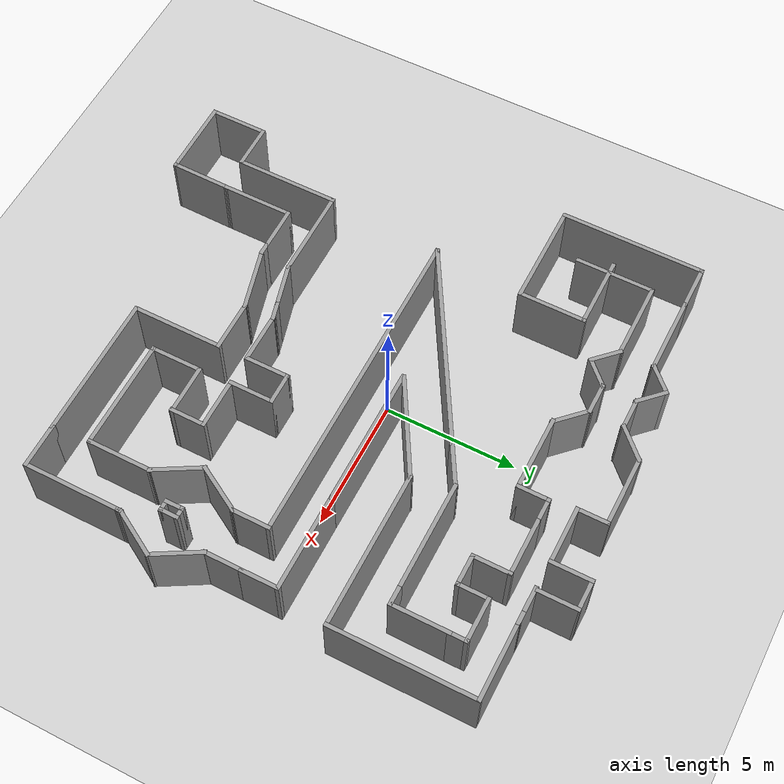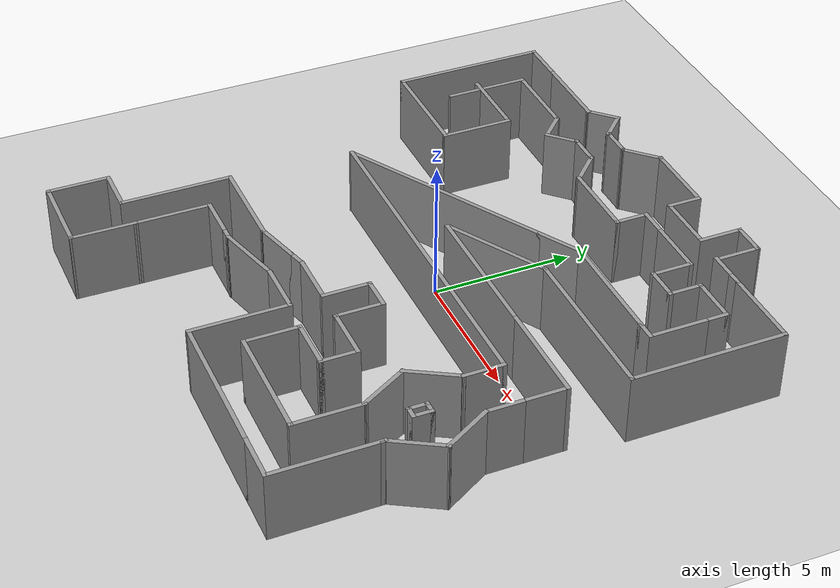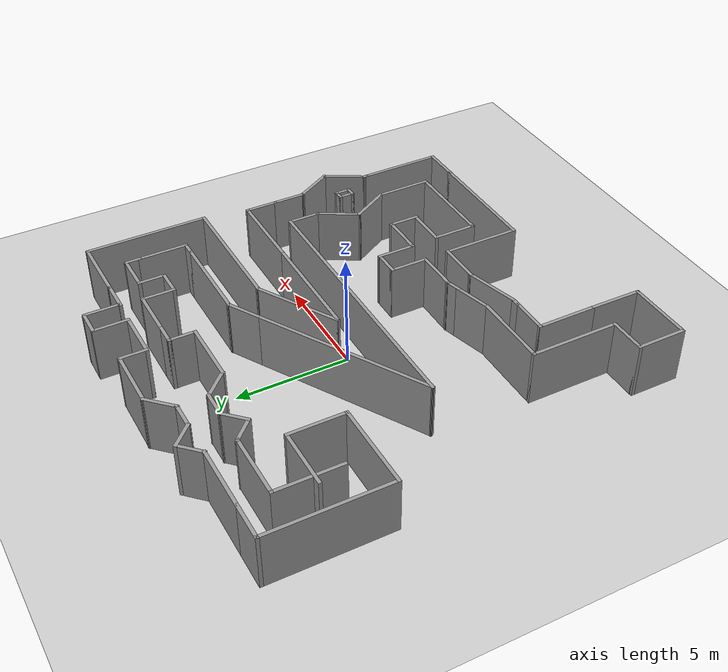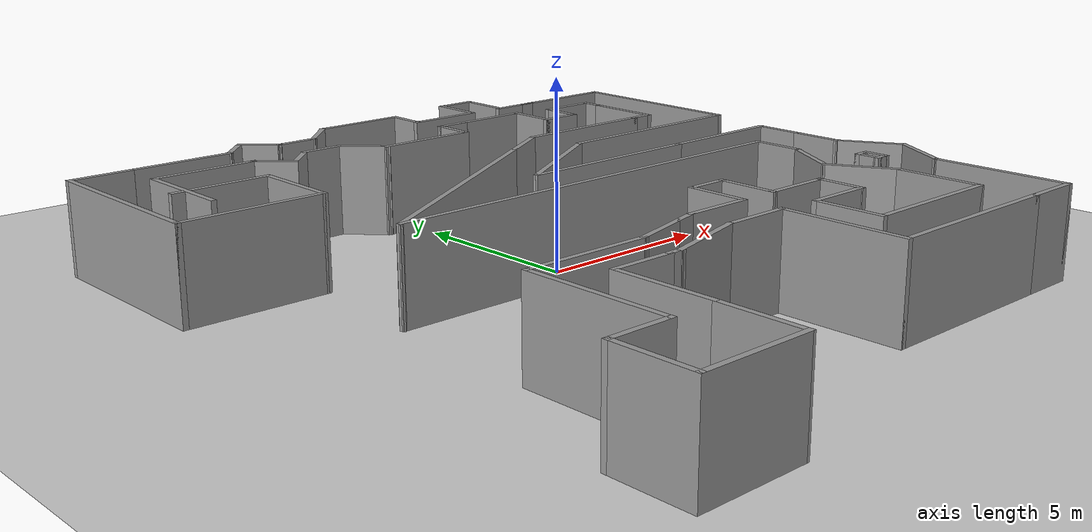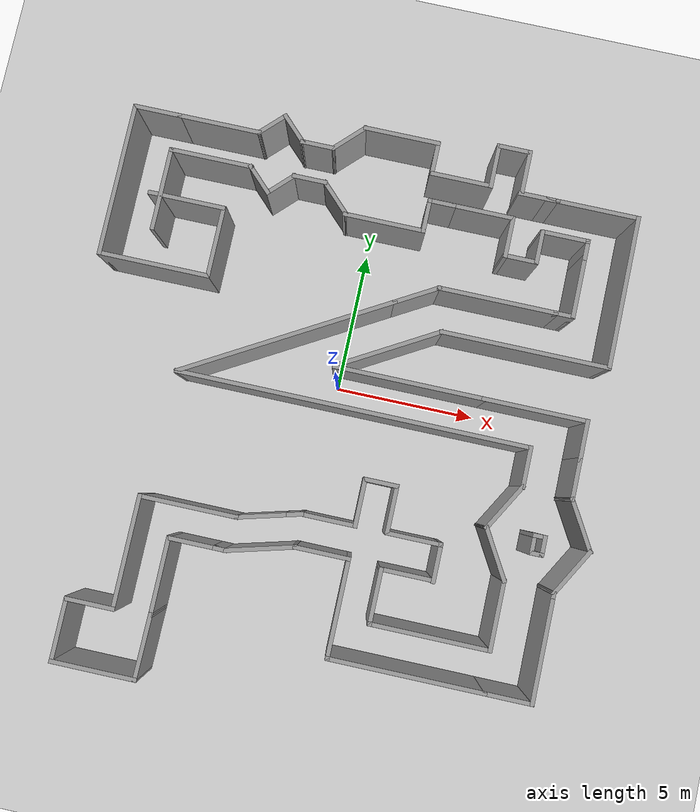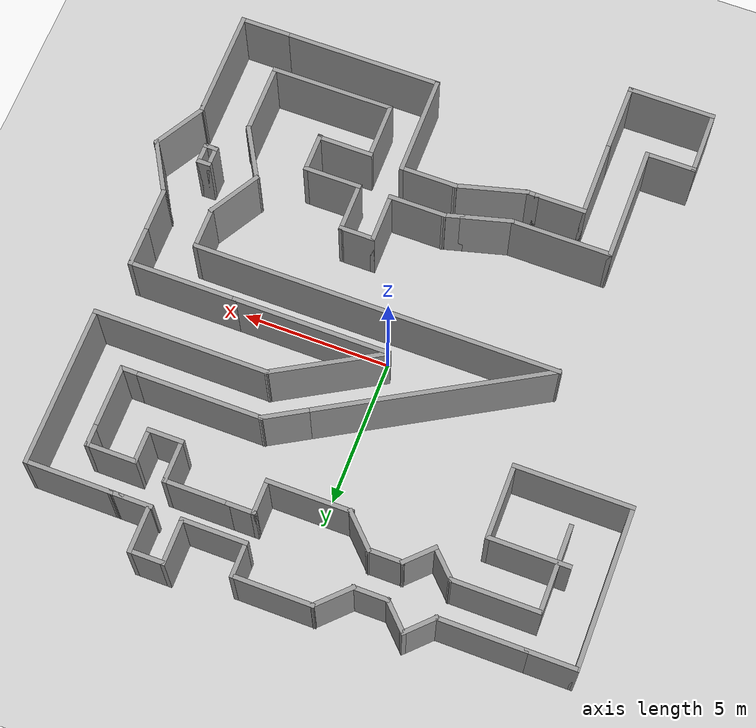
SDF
<sdf version="1.6">
 <world name="default">
  <plugin name="gazebo_occupancy_map" filename="libgazebo_grid_map_plugin.so">
   <map_resolution>0.05</map_resolution>
   <map_height>0.3</map_height>
   <map_size_x>24</map_size_x>
   <map_size_y>24</map_size_y>
   <init_robot_x>0</init_robot_x>
   <init_robot_y>0</init_robot_y>
  </plugin>
  <light name="sun" type="directional">
   <pose>0 0 10 0 -0 0</pose>
   <diffuse>0.8 0.8 0.8 1</diffuse>
   <specular>0.2 0.2 0.2 1</specular>
   <attenuation>
    <range>1000</range>
    <constant>0.9</constant>
    <linear>0.01</linear>
    <quadratic>0.001</quadratic>
   </attenuation>
   <direction>-0.5 0.1 -0.9</direction>
  </light>
  <model name="ground_plane">
   <static>1</static>
   <link name="link">
    <collision name="collision">
     <geometry><plane><normal>0 0 1</normal><size>100 100</size></plane></geometry>
     <surface><friction><ode><mu>100</mu><mu2>50</mu2></ode></friction></surface>
    </collision>
    <visual name="visual">
     <cast_shadows>0</cast_shadows>
     <geometry><plane><normal>0 0 1</normal><size>100 100</size></plane></geometry>
     <material>
      <script><uri>file://media/materials/scripts/gazebo.material</uri><name>Gazebo/Grey</name></script>
     </material>
    </visual>
   </link>
  </model>
  <gravity>0 0 -9.8</gravity>
  <magnetic_field>6e-06 2.3e-05 -4.2e-05</magnetic_field>
  <atmosphere type="adiabatic"/>
  <physics name="default_physics" default="0" type="ode">
   <max_step_size>0.001</max_step_size>
   <real_time_factor>1</real_time_factor>
   <real_time_update_rate>1000</real_time_update_rate>
  </physics>
  <scene><ambient>0.4 0.4 0.4 1</ambient><background>0.7 0.7 0.7 1</background><shadows>1</shadows></scene>
  <audio><device>default</device></audio>
  <spherical_coordinates>
   <surface_model>EARTH_WGS84</surface_model>
   <latitude_deg>0</latitude_deg>
   <longitude_deg>0</longitude_deg>
   <elevation>0</elevation>
   <heading_deg>0</heading_deg>
  </spherical_coordinates>
  <model name="track">
   <pose>0.291506 -0.924937 0 0 -0 0</pose>
   <link name="Wall_10">
    <collision name="Wall_10_Collision">
     <geometry><box><size>1.75 0.15 2.5</size></box></geometry>
     <pose>0 0 1.25 0 -0 0</pose>
    </collision>
    <visual name="Wall_10_Visual">
     <pose>0 0 1.25 0 -0 0</pose>
     <geometry><box><size>1.75 0.15 2.5</size></box></geometry>
     <material>
      <script><uri>file://media/materials/scripts/gazebo.material</uri><name>Gazebo/Grey</name></script>
      <ambient>1 1 1 1</ambient>
     </material>
     <meta><layer>0</layer></meta>
    </visual>
    <pose>-1.84314 -4.07321 0 0 -0 0.261799</pose>
   </link>
   <link name="Wall_100">
    <collision name="Wall_100_Collision">
     <geometry><box><size>1.25 0.15 2.5</size></box></geometry>
     <pose>0 0 1.25 0 -0 0</pose>
    </collision>
    <visual name="Wall_100_Visual">
     <pose>0 0 1.25 0 -0 0</pose>
     <geometry><box><size>1.25 0.15 2.5</size></box></geometry>
     <material>
      <script><uri>file://media/materials/scripts/gazebo.material</uri><name>Gazebo/Grey</name></script>
      <ambient>1 1 1 1</ambient>
     </material>
     <meta><layer>0</layer></meta>
    </visual>
    <pose>-2.72975 8.91254 0 0 -0 3.14159</pose>
   </link>
   <link name="Wall_101">
    <collision name="Wall_101_Collision">
     <geometry><box><size>1.25 0.15 2.5</size></box></geometry>
     <pose>0 0 1.25 0 -0 0</pose>
    </collision>
    <visual name="Wall_101_Visual">
     <pose>0 0 1.25 0 -0 0</pose>
     <geometry><box><size>1.25 0.15 2.5</size></box></geometry>
     <material>
      <script><uri>file://media/materials/scripts/gazebo.material</uri><name>Gazebo/Grey</name></script>
      <ambient>1 1 1 1</ambient>
     </material>
     <meta><layer>0</layer></meta>
    </visual>
    <pose>-3.66866 9.30145 0 0 -0 2.35619</pose>
   </link>
   <link name="Wall_102">
    <collision name="Wall_102_Collision">
     <geometry><box><size>1.25 0.15 2.5</size></box></geometry>
     <pose>0 0 1.25 0 -0 0</pose>
    </collision>
    <visual name="Wall_102_Visual">
     <pose>0 0 1.25 0 -0 0</pose>
     <geometry><box><size>1.25 0.15 2.5</size></box></geometry>
     <material>
      <script><uri>file://media/materials/scripts/gazebo.material</uri><name>Gazebo/Grey</name></script>
      <ambient>1 1 1 1</ambient>
     </material>
     <meta><layer>0</layer></meta>
    </visual>
    <pose>-4.44647 9.30145 0 0 -0 -2.35619</pose>
   </link>
   <link name="Wall_104">
    <collision name="Wall_104_Collision">
     <geometry><box><size>0.15 0.15 2.5</size></box></geometry>
     <pose>0 0 1.25 0 -0 0</pose>
    </collision>
    <visual name="Wall_104_Visual">
     <pose>0 0 1.25 0 -0 0</pose>
     <geometry><box><size>0.15 0.15 2.5</size></box></geometry>
     <material>
      <script><uri>file://media/materials/scripts/gazebo.material</uri><name>Gazebo/Grey</name></script>
      <ambient>1 1 1 1</ambient>
     </material>
     <meta><layer>0</layer></meta>
    </visual>
    <pose>1.5051 7.80135 0 0 -0 0</pose>
   </link>
   <link name="Wall_105">
    <collision name="Wall_105_Collision">
     <geometry><box><size>1.25 0.15 2.5</size></box></geometry>
     <pose>0 0 1.25 0 -0 0</pose>
    </collision>
    <visual name="Wall_105_Visual">
     <pose>0 0 1.25 0 -0 0</pose>
     <geometry><box><size>1.25 0.15 2.5</size></box></geometry>
     <material>
      <script><uri>file://media/materials/scripts/gazebo.material</uri><name>Gazebo/Grey</name></script>
      <ambient>1 1 1 1</ambient>
     </material>
     <meta><layer>0</layer></meta>
    </visual>
    <pose>1.5051 7.25135 0 0 -0 -1.5708</pose>
   </link>
   <link name="Wall_106">
    <collision name="Wall_106_Collision">
     <geometry><box><size>2.92589 0.15 2.5</size></box></geometry>
     <pose>0 0 1.25 0 -0 0</pose>
    </collision>
    <visual name="Wall_106_Visual">
     <pose>0 0 1.25 0 -0 0</pose>
     <geometry><box><size>2.92589 0.15 2.5</size></box></geometry>
     <material>
      <script><uri>file://media/materials/scripts/gazebo.material</uri><name>Gazebo/Grey</name></script>
      <ambient>1 1 1 1</ambient>
     </material>
     <meta><layer>0</layer></meta>
    </visual>
    <pose>0.117152 6.70135 0 0 -0 3.14159</pose>
   </link>
   <link name="Wall_107">
    <collision name="Wall_107_Collision">
     <geometry><box><size>1.5 0.15 2.5</size></box></geometry>
     <pose>0 0 1.25 0 -0 0</pose>
    </collision>
    <visual name="Wall_107_Visual">
     <pose>0 0 1.25 0 -0 0</pose>
     <geometry><box><size>1.5 0.15 2.5</size></box></geometry>
     <material>
      <script><uri>file://media/materials/scripts/gazebo.material</uri><name>Gazebo/Grey</name></script>
      <ambient>1 1 1 1</ambient>
     </material>
     <meta><layer>0</layer></meta>
    </visual>
    <pose>-1.71291 7.17864 0 0 -0 2.35619</pose>
   </link>
   <link name="Wall_11">
    <collision name="Wall_11_Collision">
     <geometry><box><size>0.75 0.15 2.5</size></box></geometry>
     <pose>0 0 1.25 0 -0 0</pose>
    </collision>
    <visual name="Wall_11_Visual">
     <pose>0 0 1.25 0 -0 0</pose>
     <geometry><box><size>0.75 0.15 2.5</size></box></geometry>
     <material>
      <script><uri>file://media/materials/scripts/gazebo.material</uri><name>Gazebo/Grey</name></script>
      <ambient>1 1 1 1</ambient>
     </material>
     <meta><layer>0</layer></meta>
    </visual>
    <pose>-0.780618 -3.78851 0 0 -0 0.261799</pose>
   </link>
   <link name="Wall_116">
    <collision name="Wall_116_Collision">
     <geometry><box><size>1.25 0.15 2.5</size></box></geometry>
     <pose>0 0 1.25 0 -0 0</pose>
    </collision>
    <visual name="Wall_116_Visual">
     <pose>0 0 1.25 0 -0 0</pose>
     <geometry><box><size>1.25 0.15 2.5</size></box></geometry>
     <material>
      <script><uri>file://media/materials/scripts/gazebo.material</uri><name>Gazebo/Grey</name></script>
      <ambient>1 1 1 1</ambient>
     </material>
     <meta><layer>0</layer></meta>
    </visual>
    <pose>-2.74021 7.65594 0 0 -0 3.14159</pose>
   </link>
   <link name="Wall_118">
    <collision name="Wall_118_Collision">
     <geometry><box><size>1.25 0.15 2.5</size></box></geometry>
     <pose>0 0 1.25 0 -0 0</pose>
    </collision>
    <visual name="Wall_118_Visual">
     <pose>0 0 1.25 0 -0 0</pose>
     <geometry><box><size>1.25 0.15 2.5</size></box></geometry>
     <material>
      <script><uri>file://media/materials/scripts/gazebo.material</uri><name>Gazebo/Grey</name></script>
      <ambient>1 1 1 1</ambient>
     </material>
     <meta><layer>0</layer></meta>
    </visual>
    <pose>-3.67912 7.26703 0 0 -0 -2.35619</pose>
   </link>
   <link name="Wall_12">
    <collision name="Wall_12_Collision">
     <geometry><box><size>2 0.15 2.5</size></box></geometry>
     <pose>0 0 1.25 0 -0 0</pose>
    </collision>
    <visual name="Wall_12_Visual">
     <pose>0 0 1.25 0 -0 0</pose>
     <geometry><box><size>2 0.15 2.5</size></box></geometry>
     <material>
      <script><uri>file://media/materials/scripts/gazebo.material</uri><name>Gazebo/Grey</name></script>
      <ambient>1 1 1 1</ambient>
     </material>
     <meta><layer>0</layer></meta>
    </visual>
    <pose>0.43416 -3.71087 0 0 -0 0</pose>
   </link>
   <link name="Wall_120">
    <collision name="Wall_120_Collision">
     <geometry><box><size>1.25 0.15 2.5</size></box></geometry>
     <pose>0 0 1.25 0 -0 0</pose>
    </collision>
    <visual name="Wall_120_Visual">
     <pose>0 0 1.25 0 -0 0</pose>
     <geometry><box><size>1.25 0.15 2.5</size></box></geometry>
     <material>
      <script><uri>file://media/materials/scripts/gazebo.material</uri><name>Gazebo/Grey</name></script>
      <ambient>1 1 1 1</ambient>
     </material>
     <meta><layer>0</layer></meta>
    </visual>
    <pose>-4.45694 7.26703 0 0 -0 2.35619</pose>
   </link>
   <link name="Wall_122">
    <collision name="Wall_122_Collision">
     <geometry><box><size>3 0.15 2.5</size></box></geometry>
     <pose>0 0 1.25 0 -0 0</pose>
    </collision>
    <visual name="Wall_122_Visual">
     <pose>0 0 1.25 0 -0 0</pose>
     <geometry><box><size>3 0.15 2.5</size></box></geometry>
     <material>
      <script><uri>file://media/materials/scripts/gazebo.material</uri><name>Gazebo/Grey</name></script>
      <ambient>1 1 1 1</ambient>
     </material>
     <meta><layer>0</layer></meta>
    </visual>
    <pose>-6.26038 8.91254 0 0 -0 3.14159</pose>
   </link>
   <link name="Wall_124">
    <collision name="Wall_124_Collision">
     <geometry><box><size>3 0.15 2.5</size></box></geometry>
     <pose>0 0 1.25 0 -0 0</pose>
    </collision>
    <visual name="Wall_124_Visual">
     <pose>0 0 1.25 0 -0 0</pose>
     <geometry><box><size>3 0.15 2.5</size></box></geometry>
     <material>
      <script><uri>file://media/materials/scripts/gazebo.material</uri><name>Gazebo/Grey</name></script>
      <ambient>1 1 1 1</ambient>
     </material>
     <meta><layer>0</layer></meta>
    </visual>
    <pose>-6.27084 7.65594 0 0 -0 3.14159</pose>
   </link>
   <link name="Wall_127">
    <collision name="Wall_127_Collision">
     <geometry><box><size>1.75 0.15 2.5</size></box></geometry>
     <pose>0 0 1.25 0 -0 0</pose>
    </collision>
    <visual name="Wall_127_Visual">
     <pose>0 0 1.25 0 -0 0</pose>
     <geometry><box><size>1.75 0.15 2.5</size></box></geometry>
     <material>
      <script><uri>file://media/materials/scripts/gazebo.material</uri><name>Gazebo/Grey</name></script>
      <ambient>1 1 1 1</ambient>
     </material>
     <meta><layer>0</layer></meta>
    </visual>
    <pose>-6.76588 -8.13027 0 0 -0 3.14159</pose>
   </link>
   <link name="Wall_128">
    <collision name="Wall_128_Collision">
     <geometry><box><size>2.25 0.15 2.5</size></box></geometry>
     <pose>0 0 1.25 0 -0 0</pose>
    </collision>
    <visual name="Wall_128_Visual">
     <pose>0 0 1.25 0 -0 0</pose>
     <geometry><box><size>2.25 0.15 2.5</size></box></geometry>
     <material>
      <script><uri>file://media/materials/scripts/gazebo.material</uri><name>Gazebo/Grey</name></script>
      <ambient>1 1 1 1</ambient>
     </material>
     <meta><layer>0</layer></meta>
    </visual>
    <pose>-7.56588 -9.18027 0 0 -0 -1.5708</pose>
   </link>
   <link name="Wall_129">
    <collision name="Wall_129_Collision">
     <geometry><box><size>3 0.15 2.5</size></box></geometry>
     <pose>0 0 1.25 0 -0 0</pose>
    </collision>
    <visual name="Wall_129_Visual">
     <pose>0 0 1.25 0 -0 0</pose>
     <geometry><box><size>3 0.15 2.5</size></box></geometry>
     <material>
      <script><uri>file://media/materials/scripts/gazebo.material</uri><name>Gazebo/Grey</name></script>
      <ambient>1 1 1 1</ambient>
     </material>
     <meta><layer>0</layer></meta>
    </visual>
    <pose>-6.14088 -10.2303 0 0 -0 0</pose>
   </link>
   <link name="Wall_13">
    <collision name="Wall_13_Collision">
     <geometry><box><size>1.75 0.15 2.5</size></box></geometry>
     <pose>0 0 1.25 0 -0 0</pose>
    </collision>
    <visual name="Wall_13_Visual">
     <pose>0 0 1.25 0 -0 0</pose>
     <geometry><box><size>1.75 0.15 2.5</size></box></geometry>
     <material>
      <script><uri>file://media/materials/scripts/gazebo.material</uri><name>Gazebo/Grey</name></script>
      <ambient>1 1 1 1</ambient>
     </material>
     <meta><layer>0</layer></meta>
    </visual>
    <pose>1.35916 -2.91087 0 0 -0 1.5708</pose>
   </link>
   <link name="Wall_130">
    <collision name="Wall_130_Collision">
     <geometry><box><size>2.33903 0.15 2.5</size></box></geometry>
     <pose>0 0 1.25 0 -0 0</pose>
    </collision>
    <visual name="Wall_130_Visual">
     <pose>0 0 1.25 0 -0 0</pose>
     <geometry><box><size>2.33903 0.15 2.5</size></box></geometry>
     <material>
      <script><uri>file://media/materials/scripts/gazebo.material</uri><name>Gazebo/Grey</name></script>
      <ambient>1 1 1 1</ambient>
     </material>
     <meta><layer>0</layer></meta>
    </visual>
    <pose>-4.70144 -9.13585 0 0 -0 1.5576</pose>
   </link>
   <link name="Wall_132">
    <collision name="Wall_132_Collision">
     <geometry><box><size>1.75 0.15 2.5</size></box></geometry>
     <pose>0 0 1.25 0 -0 0</pose>
    </collision>
    <visual name="Wall_132_Visual">
     <pose>0 0 1.25 0 -0 0</pose>
     <geometry><box><size>1.75 0.15 2.5</size></box></geometry>
     <material>
      <script><uri>file://media/materials/scripts/gazebo.material</uri><name>Gazebo/Grey</name></script>
      <ambient>1 1 1 1</ambient>
     </material>
     <meta><layer>0</layer></meta>
    </visual>
    <pose>-8.48538 8.91254 0 0 -0 3.14159</pose>
   </link>
   <link name="Wall_133">
    <collision name="Wall_133_Collision">
     <geometry><box><size>5.5 0.15 2.5</size></box></geometry>
     <pose>0 0 1.25 0 -0 0</pose>
    </collision>
    <visual name="Wall_133_Visual">
     <pose>0 0 1.25 0 -0 0</pose>
     <geometry><box><size>5.5 0.15 2.5</size></box></geometry>
     <material>
      <script><uri>file://media/materials/scripts/gazebo.material</uri><name>Gazebo/Grey</name></script>
      <ambient>1 1 1 1</ambient>
     </material>
     <meta><layer>0</layer></meta>
    </visual>
    <pose>-9.28538 6.23754 0 0 -0 -1.5708</pose>
   </link>
   <link name="Wall_134">
    <collision name="Wall_134_Collision">
     <geometry><box><size>4 0.15 2.5</size></box></geometry>
     <pose>0 0 1.25 0 -0 0</pose>
    </collision>
    <visual name="Wall_134_Visual">
     <pose>0 0 1.25 0 -0 0</pose>
     <geometry><box><size>4 0.15 2.5</size></box></geometry>
     <material>
      <script><uri>file://media/materials/scripts/gazebo.material</uri><name>Gazebo/Grey</name></script>
      <ambient>1 1 1 1</ambient>
     </material>
     <meta><layer>0</layer></meta>
    </visual>
    <pose>-7.36038 3.56254 0 0 -0 0</pose>
   </link>
   <link name="Wall_135">
    <collision name="Wall_135_Collision">
     <geometry><box><size>2.5958 0.15 2.5</size></box></geometry>
     <pose>0 0 1.25 0 -0 0</pose>
    </collision>
    <visual name="Wall_135_Visual">
     <pose>0 0 1.25 0 -0 0</pose>
     <geometry><box><size>2.5958 0.15 2.5</size></box></geometry>
     <material>
      <script><uri>file://media/materials/scripts/gazebo.material</uri><name>Gazebo/Grey</name></script>
      <ambient>1 1 1 1</ambient>
     </material>
     <meta><layer>0</layer></meta>
    </visual>
    <pose>-5.43538 4.78544 0 0 -0 1.5708</pose>
   </link>
   <link name="Wall_136">
    <collision name="Wall_136_Collision">
     <geometry><box><size>2.75 0.15 2.5</size></box></geometry>
     <pose>0 0 1.25 0 -0 0</pose>
    </collision>
    <visual name="Wall_136_Visual">
     <pose>0 0 1.25 0 -0 0</pose>
     <geometry><box><size>2.75 0.15 2.5</size></box></geometry>
     <material>
      <script><uri>file://media/materials/scripts/gazebo.material</uri><name>Gazebo/Grey</name></script>
      <ambient>1 1 1 1</ambient>
     </material>
     <meta><layer>0</layer></meta>
    </visual>
    <pose>-6.76198 6.00834 0 0 -0 3.14159</pose>
   </link>
   <link name="Wall_138">
    <collision name="Wall_138_Collision">
     <geometry><box><size>3 0.15 2.5</size></box></geometry>
     <pose>0 0 1.25 0 -0 0</pose>
    </collision>
    <visual name="Wall_138_Visual">
     <pose>0 0 1.25 0 -0 0</pose>
     <geometry><box><size>3 0.15 2.5</size></box></geometry>
     <material>
      <script><uri>file://media/materials/scripts/gazebo.material</uri><name>Gazebo/Grey</name></script>
      <ambient>1 1 1 1</ambient>
     </material>
     <meta><layer>0</layer></meta>
    </visual>
    <pose>-7.69585 6.23094 0 0 -0 -1.5708</pose>
   </link>
   <link name="Wall_14">
    <collision name="Wall_14_Collision">
     <geometry><box><size>1.25 0.15 2.5</size></box></geometry>
     <pose>0 0 1.25 0 -0 0</pose>
    </collision>
    <visual name="Wall_14_Visual">
     <pose>0 0 1.25 0 -0 0</pose>
     <geometry><box><size>1.25 0.15 2.5</size></box></geometry>
     <material>
      <script><uri>file://media/materials/scripts/gazebo.material</uri><name>Gazebo/Grey</name></script>
      <ambient>1 1 1 1</ambient>
     </material>
     <meta><layer>0</layer></meta>
    </visual>
    <pose>1.90916 -2.11087 0 0 -0 0</pose>
   </link>
   <link name="Wall_15">
    <collision name="Wall_15_Collision">
     <geometry><box><size>1.75 0.15 2.5</size></box></geometry>
     <pose>0 0 1.25 0 -0 0</pose>
    </collision>
    <visual name="Wall_15_Visual">
     <pose>0 0 1.25 0 -0 0</pose>
     <geometry><box><size>1.75 0.15 2.5</size></box></geometry>
     <material>
      <script><uri>file://media/materials/scripts/gazebo.material</uri><name>Gazebo/Grey</name></script>
      <ambient>1 1 1 1</ambient>
     </material>
     <meta><layer>0</layer></meta>
    </visual>
    <pose>2.45916 -2.91087 0 0 -0 -1.5708</pose>
   </link>
   <link name="Wall_16">
    <collision name="Wall_16_Collision">
     <geometry><box><size>2 0.15 2.5</size></box></geometry>
     <pose>0 0 1.25 0 -0 0</pose>
    </collision>
    <visual name="Wall_16_Visual">
     <pose>0 0 1.25 0 -0 0</pose>
     <geometry><box><size>2 0.15 2.5</size></box></geometry>
     <material>
      <script><uri>file://media/materials/scripts/gazebo.material</uri><name>Gazebo/Grey</name></script>
      <ambient>1 1 1 1</ambient>
     </material>
     <meta><layer>0</layer></meta>
    </visual>
    <pose>3.38416 -3.71087 0 0 -0 0</pose>
   </link>
   <link name="Wall_17">
    <collision name="Wall_17_Collision">
     <geometry><box><size>1.39767 0.15 2.5</size></box></geometry>
     <pose>0 0 1.25 0 -0 0</pose>
    </collision>
    <visual name="Wall_17_Visual">
     <pose>0 0 1.25 0 -0 0</pose>
     <geometry><box><size>1.39767 0.15 2.5</size></box></geometry>
     <material>
      <script><uri>file://media/materials/scripts/gazebo.material</uri><name>Gazebo/Grey</name></script>
      <ambient>1 1 1 1</ambient>
     </material>
     <meta><layer>0</layer></meta>
    </visual>
    <pose>4.30916 -4.3347 0 0 -0 -1.5708</pose>
   </link>
   <link name="Wall_18">
    <collision name="Wall_18_Collision">
     <geometry><box><size>1.938 0.15 2.5</size></box></geometry>
     <pose>0 0 1.25 0 -0 0</pose>
    </collision>
    <visual name="Wall_18_Visual">
     <pose>0 0 1.25 0 -0 0</pose>
     <geometry><box><size>1.938 0.15 2.5</size></box></geometry>
     <material>
      <script><uri>file://media/materials/scripts/gazebo.material</uri><name>Gazebo/Grey</name></script>
      <ambient>1 1 1 1</ambient>
     </material>
     <meta><layer>0</layer></meta>
    </visual>
    <pose>3.41516 -4.92795 0 0 -0 3.14159</pose>
   </link>
   <link name="Wall_21">
    <collision name="Wall_21_Collision">
     <geometry><box><size>2.75 0.15 2.5</size></box></geometry>
     <pose>0 0 1.25 0 -0 0</pose>
    </collision>
    <visual name="Wall_21_Visual">
     <pose>0 0 1.25 0 -0 0</pose>
     <geometry><box><size>2.75 0.15 2.5</size></box></geometry>
     <material>
      <script><uri>file://media/materials/scripts/gazebo.material</uri><name>Gazebo/Grey</name></script>
      <ambient>1 1 1 1</ambient>
     </material>
     <meta><layer>0</layer></meta>
    </visual>
    <pose>-4.68699 -6.74143 0 0 -0 1.5708</pose>
   </link>
   <link name="Wall_22">
    <collision name="Wall_22_Collision">
     <geometry><box><size>1.75 0.15 2.5</size></box></geometry>
     <pose>0 0 1.25 0 -0 0</pose>
    </collision>
    <visual name="Wall_22_Visual">
     <pose>0 0 1.25 0 -0 0</pose>
     <geometry><box><size>1.75 0.15 2.5</size></box></geometry>
     <material>
      <script><uri>file://media/materials/scripts/gazebo.material</uri><name>Gazebo/Grey</name></script>
      <ambient>1 1 1 1</ambient>
     </material>
     <meta><layer>0</layer></meta>
    </visual>
    <pose>-3.88699 -5.44143 0 0 -0 0</pose>
   </link>
   <link name="Wall_24">
    <collision name="Wall_24_Collision">
     <geometry><box><size>0.5 0.15 2.5</size></box></geometry>
     <pose>0 0 1.25 0 -0 0</pose>
    </collision>
    <visual name="Wall_24_Visual">
     <pose>0 0 1.25 0 -0 0</pose>
     <geometry><box><size>0.5 0.15 2.5</size></box></geometry>
     <material>
      <script><uri>file://media/materials/scripts/gazebo.material</uri><name>Gazebo/Grey</name></script>
      <ambient>1 1 1 1</ambient>
     </material>
     <meta><layer>0</layer></meta>
    </visual>
    <pose>-2.91199 -5.44143 0 0 -0 0</pose>
   </link>
   <link name="Wall_25">
    <collision name="Wall_25_Collision">
     <geometry><box><size>2.5 0.15 2.5</size></box></geometry>
     <pose>0 0 1.25 0 -0 0</pose>
    </collision>
    <visual name="Wall_25_Visual">
     <pose>0 0 1.25 0 -0 0</pose>
     <geometry><box><size>2.5 0.15 2.5</size></box></geometry>
     <material>
      <script><uri>file://media/materials/scripts/gazebo.material</uri><name>Gazebo/Grey</name></script>
      <ambient>1 1 1 1</ambient>
     </material>
     <meta><layer>0</layer></meta>
    </visual>
    <pose>-1.60203 -5.13732 0 0 -0 0.261799</pose>
   </link>
   <link name="Wall_26">
    <collision name="Wall_26_Collision">
     <geometry><box><size>2 0.15 2.5</size></box></geometry>
     <pose>0 0 1.25 0 -0 0</pose>
    </collision>
    <visual name="Wall_26_Visual">
     <pose>0 0 1.25 0 -0 0</pose>
     <geometry><box><size>2 0.15 2.5</size></box></geometry>
     <material>
      <script><uri>file://media/materials/scripts/gazebo.material</uri><name>Gazebo/Grey</name></script>
      <ambient>1 1 1 1</ambient>
     </material>
     <meta><layer>0</layer></meta>
    </visual>
    <pose>0.457931 -4.83321 0 0 -0 0</pose>
   </link>
   <link name="Wall_27">
    <collision name="Wall_27_Collision">
     <geometry><box><size>3.5 0.15 2.5</size></box></geometry>
     <pose>0 0 1.25 0 -0 0</pose>
    </collision>
    <visual name="Wall_27_Visual">
     <pose>0 0 1.25 0 -0 0</pose>
     <geometry><box><size>3.5 0.15 2.5</size></box></geometry>
     <material>
      <script><uri>file://media/materials/scripts/gazebo.material</uri><name>Gazebo/Grey</name></script>
      <ambient>1 1 1 1</ambient>
     </material>
     <meta><layer>0</layer></meta>
    </visual>
    <pose>1.38293 -6.5082 0 0 -0 -1.5708</pose>
   </link>
   <link name="Wall_28">
    <collision name="Wall_28_Collision">
     <geometry><box><size>5.5 0.15 2.5</size></box></geometry>
     <pose>0 0 1.25 0 -0 0</pose>
    </collision>
    <visual name="Wall_28_Visual">
     <pose>0 0 1.25 0 -0 0</pose>
     <geometry><box><size>5.5 0.15 2.5</size></box></geometry>
     <material>
      <script><uri>file://media/materials/scripts/gazebo.material</uri><name>Gazebo/Grey</name></script>
      <ambient>1 1 1 1</ambient>
     </material>
     <meta><layer>0</layer></meta>
    </visual>
    <pose>4.05793 -8.1832 0 0 -0 0</pose>
   </link>
   <link name="Wall_30">
    <collision name="Wall_30_Collision">
     <geometry><box><size>2 0.15 2.5</size></box></geometry>
     <pose>0 0 1.25 0 -0 0</pose>
    </collision>
    <visual name="Wall_30_Visual">
     <pose>0 0 1.25 0 -0 0</pose>
     <geometry><box><size>2 0.15 2.5</size></box></geometry>
     <material>
      <script><uri>file://media/materials/scripts/gazebo.material</uri><name>Gazebo/Grey</name></script>
      <ambient>1 1 1 1</ambient>
     </material>
     <meta><layer>0</layer></meta>
    </visual>
    <pose>2.52116 -5.85295 0 0 -0 -1.5708</pose>
   </link>
   <link name="Wall_31">
    <collision name="Wall_31_Collision">
     <geometry><box><size>4.25 0.15 2.5</size></box></geometry>
     <pose>0 0 1.25 0 -0 0</pose>
    </collision>
    <visual name="Wall_31_Visual">
     <pose>0 0 1.25 0 -0 0</pose>
     <geometry><box><size>4.25 0.15 2.5</size></box></geometry>
     <material>
      <script><uri>file://media/materials/scripts/gazebo.material</uri><name>Gazebo/Grey</name></script>
      <ambient>1 1 1 1</ambient>
     </material>
     <meta><layer>0</layer></meta>
    </visual>
    <pose>4.57116 -6.77795 0 0 -0 0</pose>
   </link>
   <link name="Wall_32">
    <collision name="Wall_32_Collision">
     <geometry><box><size>2.5 0.15 2.5</size></box></geometry>
     <pose>0 0 1.25 0 -0 0</pose>
    </collision>
    <visual name="Wall_32_Visual">
     <pose>0 0 1.25 0 -0 0</pose>
     <geometry><box><size>2.5 0.15 2.5</size></box></geometry>
     <material>
      <script><uri>file://media/materials/scripts/gazebo.material</uri><name>Gazebo/Grey</name></script>
      <ambient>1 1 1 1</ambient>
     </material>
     <meta><layer>0</layer></meta>
    </visual>
    <pose>6.62116 -5.60295 0 0 -0 1.5708</pose>
   </link>
   <link name="Wall_33">
    <collision name="Wall_33_Collision">
     <geometry><box><size>2 0.15 2.5</size></box></geometry>
     <pose>0 0 1.25 0 -0 0</pose>
    </collision>
    <visual name="Wall_33_Visual">
     <pose>0 0 1.25 0 -0 0</pose>
     <geometry><box><size>2 0.15 2.5</size></box></geometry>
     <material>
      <script><uri>file://media/materials/scripts/gazebo.material</uri><name>Gazebo/Grey</name></script>
      <ambient>1 1 1 1</ambient>
     </material>
     <meta><layer>0</layer></meta>
    </visual>
    <pose>6.15866 -3.62688 0 0 -0 2.0944</pose>
   </link>
   <link name="Wall_34">
    <collision name="Wall_34_Collision">
     <geometry><box><size>2 0.15 2.5</size></box></geometry>
     <pose>0 0 1.25 0 -0 0</pose>
    </collision>
    <visual name="Wall_34_Visual">
     <pose>0 0 1.25 0 -0 0</pose>
     <geometry><box><size>2 0.15 2.5</size></box></geometry>
     <material>
      <script><uri>file://media/materials/scripts/gazebo.material</uri><name>Gazebo/Grey</name></script>
      <ambient>1 1 1 1</ambient>
     </material>
     <meta><layer>0</layer></meta>
    </visual>
    <pose>6.15866 -2.02473 0 0 -0 1.0472</pose>
   </link>
   <link name="Wall_35">
    <collision name="Wall_35_Collision">
     <geometry><box><size>1.5 0.15 2.5</size></box></geometry>
     <pose>0 0 1.25 0 -0 0</pose>
    </collision>
    <visual name="Wall_35_Visual">
     <pose>0 0 1.25 0 -0 0</pose>
     <geometry><box><size>1.5 0.15 2.5</size></box></geometry>
     <material>
      <script><uri>file://media/materials/scripts/gazebo.material</uri><name>Gazebo/Grey</name></script>
      <ambient>1 1 1 1</ambient>
     </material>
     <meta><layer>0</layer></meta>
    </visual>
    <pose>6.62116 -0.548654 0 0 -0 1.5708</pose>
   </link>
   <link name="Wall_37">
    <collision name="Wall_37_Collision">
     <geometry><box><size>1.75 0.15 2.5</size></box></geometry>
     <pose>0 0 1.25 0 -0 0</pose>
    </collision>
    <visual name="Wall_37_Visual">
     <pose>0 0 1.25 0 -0 0</pose>
     <geometry><box><size>1.75 0.15 2.5</size></box></geometry>
     <material>
      <script><uri>file://media/materials/scripts/gazebo.material</uri><name>Gazebo/Grey</name></script>
      <ambient>1 1 1 1</ambient>
     </material>
     <meta><layer>0</layer></meta>
    </visual>
    <pose>7.53293 -8.1832 0 0 -0 0</pose>
   </link>
   <link name="Wall_39">
    <collision name="Wall_39_Collision">
     <geometry><box><size>3.75 0.15 2.5</size></box></geometry>
     <pose>0 0 1.25 0 -0 0</pose>
    </collision>
    <visual name="Wall_39_Visual">
     <pose>0 0 1.25 0 -0 0</pose>
     <geometry><box><size>3.75 0.15 2.5</size></box></geometry>
     <material>
      <script><uri>file://media/materials/scripts/gazebo.material</uri><name>Gazebo/Grey</name></script>
      <ambient>1 1 1 1</ambient>
     </material>
     <meta><layer>0</layer></meta>
    </visual>
    <pose>8.33293 -6.3832 0 0 -0 1.5708</pose>
   </link>
   <link name="Wall_40">
    <collision name="Wall_40_Collision">
     <geometry><box><size>0.15 0.15 2.5</size></box></geometry>
     <pose>0 0 1.25 0 -0 0</pose>
    </collision>
    <visual name="Wall_40_Visual">
     <pose>0 0 1.25 0 -0 0</pose>
     <geometry><box><size>0.15 0.15 2.5</size></box></geometry>
     <material>
      <script><uri>file://media/materials/scripts/gazebo.material</uri><name>Gazebo/Grey</name></script>
      <ambient>1 1 1 1</ambient>
     </material>
     <meta><layer>0</layer></meta>
    </visual>
    <pose>8.33293 -4.58321 0 0 -0 0</pose>
   </link>
   <link name="Wall_41">
    <collision name="Wall_41_Collision">
     <geometry><box><size>0.25 0.15 2.5</size></box></geometry>
     <pose>0 0 1.25 0 -0 0</pose>
    </collision>
    <visual name="Wall_41_Visual">
     <pose>0 0 1.25 0 -0 0</pose>
     <geometry><box><size>0.25 0.15 2.5</size></box></geometry>
     <material>
      <script><uri>file://media/materials/scripts/gazebo.material</uri><name>Gazebo/Grey</name></script>
      <ambient>1 1 1 1</ambient>
     </material>
     <meta><layer>0</layer></meta>
    </visual>
    <pose>8.33293 -4.5332 0 0 -0 1.5708</pose>
   </link>
   <link name="Wall_42">
    <collision name="Wall_42_Collision">
     <geometry><box><size>2 0.15 2.5</size></box></geometry>
     <pose>0 0 1.25 0 -0 0</pose>
    </collision>
    <visual name="Wall_42_Visual">
     <pose>0 0 1.25 0 -0 0</pose>
     <geometry><box><size>2 0.15 2.5</size></box></geometry>
     <material>
      <script><uri>file://media/materials/scripts/gazebo.material</uri><name>Gazebo/Grey</name></script>
      <ambient>1 1 1 1</ambient>
     </material>
     <meta><layer>0</layer></meta>
    </visual>
    <pose>8.79543 -3.68213 0 0 -0 1.0472</pose>
   </link>
   <link name="Wall_43">
    <collision name="Wall_43_Collision">
     <geometry><box><size>2 0.15 2.5</size></box></geometry>
     <pose>0 0 1.25 0 -0 0</pose>
    </collision>
    <visual name="Wall_43_Visual">
     <pose>0 0 1.25 0 -0 0</pose>
     <geometry><box><size>2 0.15 2.5</size></box></geometry>
     <material>
      <script><uri>file://media/materials/scripts/gazebo.material</uri><name>Gazebo/Grey</name></script>
      <ambient>1 1 1 1</ambient>
     </material>
     <meta><layer>0</layer></meta>
    </visual>
    <pose>8.79543 -2.07998 0 0 -0 2.0944</pose>
   </link>
   <link name="Wall_44">
    <collision name="Wall_44_Collision">
     <geometry><box><size>1.5 0.15 2.5</size></box></geometry>
     <pose>0 0 1.25 0 -0 0</pose>
    </collision>
    <visual name="Wall_44_Visual">
     <pose>0 0 1.25 0 -0 0</pose>
     <geometry><box><size>1.5 0.15 2.5</size></box></geometry>
     <material>
      <script><uri>file://media/materials/scripts/gazebo.material</uri><name>Gazebo/Grey</name></script>
      <ambient>1 1 1 1</ambient>
     </material>
     <meta><layer>0</layer></meta>
    </visual>
    <pose>8.33293 -0.603911 0 0 -0 1.5708</pose>
   </link>
   <link name="Wall_46">
    <collision name="Wall_46_Collision">
     <geometry><box><size>0.75 0.15 2.5</size></box></geometry>
     <pose>0 0 1.25 0 -0 0</pose>
    </collision>
    <visual name="Wall_46_Visual">
     <pose>0 0 1.25 0 -0 0</pose>
     <geometry><box><size>0.75 0.15 2.5</size></box></geometry>
     <material>
      <script><uri>file://media/materials/scripts/gazebo.material</uri><name>Gazebo/Grey</name></script>
      <ambient>1 1 1 1</ambient>
     </material>
     <meta><layer>0</layer></meta>
    </visual>
    <pose>7.33871 -3.02712 0 0 -0 -1.5708</pose>
   </link>
   <link name="Wall_47">
    <collision name="Wall_47_Collision">
     <geometry><box><size>0.5 0.15 2.5</size></box></geometry>
     <pose>0 0 1.25 0 -0 0</pose>
    </collision>
    <visual name="Wall_47_Visual">
     <pose>0 0 1.25 0 -0 0</pose>
     <geometry><box><size>0.5 0.15 2.5</size></box></geometry>
     <material>
      <script><uri>file://media/materials/scripts/gazebo.material</uri><name>Gazebo/Grey</name></script>
      <ambient>1 1 1 1</ambient>
     </material>
     <meta><layer>0</layer></meta>
    </visual>
    <pose>7.51371 -3.32712 0 0 -0 0</pose>
   </link>
   <link name="Wall_48">
    <collision name="Wall_48_Collision">
     <geometry><box><size>0.75 0.15 2.5</size></box></geometry>
     <pose>0 0 1.25 0 -0 0</pose>
    </collision>
    <visual name="Wall_48_Visual">
     <pose>0 0 1.25 0 -0 0</pose>
     <geometry><box><size>0.75 0.15 2.5</size></box></geometry>
     <material>
      <script><uri>file://media/materials/scripts/gazebo.material</uri><name>Gazebo/Grey</name></script>
      <ambient>1 1 1 1</ambient>
     </material>
     <meta><layer>0</layer></meta>
    </visual>
    <pose>7.68871 -3.02712 0 0 -0 1.5708</pose>
   </link>
   <link name="Wall_49">
    <collision name="Wall_49_Collision">
     <geometry><box><size>0.5 0.15 2.5</size></box></geometry>
     <pose>0 0 1.25 0 -0 0</pose>
    </collision>
    <visual name="Wall_49_Visual">
     <pose>0 0 1.25 0 -0 0</pose>
     <geometry><box><size>0.5 0.15 2.5</size></box></geometry>
     <material>
      <script><uri>file://media/materials/scripts/gazebo.material</uri><name>Gazebo/Grey</name></script>
      <ambient>1 1 1 1</ambient>
     </material>
     <meta><layer>0</layer></meta>
    </visual>
    <pose>7.51371 -2.72712 0 0 -0 3.14159</pose>
   </link>
   <link name="Wall_51">
    <collision name="Wall_51_Collision">
     <geometry><box><size>12.5 0.15 2.5</size></box></geometry>
     <pose>0 0 1.25 0 -0 0</pose>
    </collision>
    <visual name="Wall_51_Visual">
     <pose>0 0 1.25 0 -0 0</pose>
     <geometry><box><size>12.5 0.15 2.5</size></box></geometry>
     <material>
      <script><uri>file://media/materials/scripts/gazebo.material</uri><name>Gazebo/Grey</name></script>
      <ambient>1 1 1 1</ambient>
     </material>
     <meta><layer>0</layer></meta>
    </visual>
    <pose>0.446159 0.126346 0 0 -0 3.14159</pose>
   </link>
   <link name="Wall_52">
    <collision name="Wall_52_Collision">
     <geometry><box><size>8 0.15 2.5</size></box></geometry>
     <pose>0 0 1.25 0 -0 0</pose>
    </collision>
    <visual name="Wall_52_Visual">
     <pose>0 0 1.25 0 -0 0</pose>
     <geometry><box><size>8 0.15 2.5</size></box></geometry>
     <material>
      <script><uri>file://media/materials/scripts/gazebo.material</uri><name>Gazebo/Grey</name></script>
      <ambient>1 1 1 1</ambient>
     </material>
     <meta><layer>0</layer></meta>
    </visual>
    <pose>-2.32969 2.08885 0 0 -0 0.523599</pose>
   </link>
   <link name="Wall_54">
    <collision name="Wall_54_Collision">
     <geometry><box><size>1.5 0.15 2.5</size></box></geometry>
     <pose>0 0 1.25 0 -0 0</pose>
    </collision>
    <visual name="Wall_54_Visual">
     <pose>0 0 1.25 0 -0 0</pose>
     <geometry><box><size>1.5 0.15 2.5</size></box></geometry>
     <material>
      <script><uri>file://media/materials/scripts/gazebo.material</uri><name>Gazebo/Grey</name></script>
      <ambient>1 1 1 1</ambient>
     </material>
     <meta><layer>0</layer></meta>
    </visual>
    <pose>8.33293 0.746089 0 0 -0 1.5708</pose>
   </link>
   <link name="Wall_55">
    <collision name="Wall_55_Collision">
     <geometry><box><size>3.75 0.15 2.5</size></box></geometry>
     <pose>0 0 1.25 0 -0 0</pose>
    </collision>
    <visual name="Wall_55_Visual">
     <pose>0 0 1.25 0 -0 0</pose>
     <geometry><box><size>3.75 0.15 2.5</size></box></geometry>
     <material>
      <script><uri>file://media/materials/scripts/gazebo.material</uri><name>Gazebo/Grey</name></script>
      <ambient>1 1 1 1</ambient>
     </material>
     <meta><layer>0</layer></meta>
    </visual>
    <pose>6.53293 1.42109 0 0 -0 3.14159</pose>
   </link>
   <link name="Wall_57">
    <collision name="Wall_57_Collision">
     <geometry><box><size>5.36181 0.15 2.5</size></box></geometry>
     <pose>0 0 1.25 0 -0 0</pose>
    </collision>
    <visual name="Wall_57_Visual">
     <pose>0 0 1.25 0 -0 0</pose>
     <geometry><box><size>5.36181 0.15 2.5</size></box></geometry>
     <material>
      <script><uri>file://media/materials/scripts/gazebo.material</uri><name>Gazebo/Grey</name></script>
      <ambient>1 1 1 1</ambient>
     </material>
     <meta><layer>0</layer></meta>
    </visual>
    <pose>2.12703 1.42109 0 0 -0 3.14159</pose>
   </link>
   <link name="Wall_58">
    <collision name="Wall_58_Collision">
     <geometry><box><size>4 0.15 2.5</size></box></geometry>
     <pose>0 0 1.25 0 -0 0</pose>
    </collision>
    <visual name="Wall_58_Visual">
     <pose>0 0 1.25 0 -0 0</pose>
     <geometry><box><size>4 0.15 2.5</size></box></geometry>
     <material>
      <script><uri>file://media/materials/scripts/gazebo.material</uri><name>Gazebo/Grey</name></script>
      <ambient>1 1 1 1</ambient>
     </material>
     <meta><layer>0</layer></meta>
    </visual>
    <pose>1.18823 2.41418 0 0 -0 0.523599</pose>
   </link>
   <link name="Wall_63">
    <collision name="Wall_63_Collision">
     <geometry><box><size>1.75 0.15 2.5</size></box></geometry>
     <pose>0 0 1.25 0 -0 0</pose>
    </collision>
    <visual name="Wall_63_Visual">
     <pose>0 0 1.25 0 -0 0</pose>
     <geometry><box><size>1.75 0.15 2.5</size></box></geometry>
     <material>
      <script><uri>file://media/materials/scripts/gazebo.material</uri><name>Gazebo/Grey</name></script>
      <ambient>1 1 1 1</ambient>
     </material>
     <meta><layer>0</layer></meta>
    </visual>
    <pose>1.76228 4.45135 0 0 -0 0.523599</pose>
   </link>
   <link name="Wall_64">
    <collision name="Wall_64_Collision">
     <geometry><box><size>4.25 0.15 2.5</size></box></geometry>
     <pose>0 0 1.25 0 -0 0</pose>
    </collision>
    <visual name="Wall_64_Visual">
     <pose>0 0 1.25 0 -0 0</pose>
     <geometry><box><size>4.25 0.15 2.5</size></box></geometry>
     <material>
      <script><uri>file://media/materials/scripts/gazebo.material</uri><name>Gazebo/Grey</name></script>
      <ambient>1 1 1 1</ambient>
     </material>
     <meta><layer>0</layer></meta>
    </visual>
    <pose>4.5051 4.85135 0 0 -0 0</pose>
   </link>
   <link name="Wall_66">
    <collision name="Wall_66_Collision">
     <geometry><box><size>6 0.15 2.5</size></box></geometry>
     <pose>0 0 1.25 0 -0 0</pose>
    </collision>
    <visual name="Wall_66_Visual">
     <pose>0 0 1.25 0 -0 0</pose>
     <geometry><box><size>6 0.15 2.5</size></box></geometry>
     <material>
      <script><uri>file://media/materials/scripts/gazebo.material</uri><name>Gazebo/Grey</name></script>
      <ambient>1 1 1 1</ambient>
     </material>
     <meta><layer>0</layer></meta>
    </visual>
    <pose>5.78032 3.37668 0 0 -0 0</pose>
   </link>
   <link name="Wall_67">
    <collision name="Wall_67_Collision">
     <geometry><box><size>5.5 0.15 2.5</size></box></geometry>
     <pose>0 0 1.25 0 -0 0</pose>
    </collision>
    <visual name="Wall_67_Visual">
     <pose>0 0 1.25 0 -0 0</pose>
     <geometry><box><size>5.5 0.15 2.5</size></box></geometry>
     <material>
      <script><uri>file://media/materials/scripts/gazebo.material</uri><name>Gazebo/Grey</name></script>
      <ambient>1 1 1 1</ambient>
     </material>
     <meta><layer>0</layer></meta>
    </visual>
    <pose>8.70533 6.05168 0 0 -0 1.5708</pose>
   </link>
   <link name="Wall_69">
    <collision name="Wall_69_Collision">
     <geometry><box><size>0.75 0.15 2.5</size></box></geometry>
     <pose>0 0 1.25 0 -0 0</pose>
    </collision>
    <visual name="Wall_69_Visual">
     <pose>0 0 1.25 0 -0 0</pose>
     <geometry><box><size>0.75 0.15 2.5</size></box></geometry>
     <material>
      <script><uri>file://media/materials/scripts/gazebo.material</uri><name>Gazebo/Grey</name></script>
      <ambient>1 1 1 1</ambient>
     </material>
     <meta><layer>0</layer></meta>
    </visual>
    <pose>6.8551 4.85135 0 0 -0 0</pose>
   </link>
   <link name="Wall_70">
    <collision name="Wall_70_Collision">
     <geometry><box><size>2.25 0.15 2.5</size></box></geometry>
     <pose>0 0 1.25 0 -0 0</pose>
    </collision>
    <visual name="Wall_70_Visual">
     <pose>0 0 1.25 0 -0 0</pose>
     <geometry><box><size>2.25 0.15 2.5</size></box></geometry>
     <material>
      <script><uri>file://media/materials/scripts/gazebo.material</uri><name>Gazebo/Grey</name></script>
      <ambient>1 1 1 1</ambient>
     </material>
     <meta><layer>0</layer></meta>
    </visual>
    <pose>7.1551 5.90135 0 0 -0 1.5708</pose>
   </link>
   <link name="Wall_71">
    <collision name="Wall_71_Collision">
     <geometry><box><size>0.75 0.15 2.5</size></box></geometry>
     <pose>0 0 1.25 0 -0 0</pose>
    </collision>
    <visual name="Wall_71_Visual">
     <pose>0 0 1.25 0 -0 0</pose>
     <geometry><box><size>0.75 0.15 2.5</size></box></geometry>
     <material>
      <script><uri>file://media/materials/scripts/gazebo.material</uri><name>Gazebo/Grey</name></script>
      <ambient>1 1 1 1</ambient>
     </material>
     <meta><layer>0</layer></meta>
    </visual>
    <pose>7.1551 7.25135 0 0 -0 1.5708</pose>
   </link>
   <link name="Wall_72">
    <collision name="Wall_72_Collision">
     <geometry><box><size>1.75 0.15 2.5</size></box></geometry>
     <pose>0 0 1.25 0 -0 0</pose>
    </collision>
    <visual name="Wall_72_Visual">
     <pose>0 0 1.25 0 -0 0</pose>
     <geometry><box><size>1.75 0.15 2.5</size></box></geometry>
     <material>
      <script><uri>file://media/materials/scripts/gazebo.material</uri><name>Gazebo/Grey</name></script>
      <ambient>1 1 1 1</ambient>
     </material>
     <meta><layer>0</layer></meta>
    </visual>
    <pose>6.3551 7.55135 0 0 -0 3.14159</pose>
   </link>
   <link name="Wall_74">
    <collision name="Wall_74_Collision">
     <geometry><box><size>1.25 0.15 2.5</size></box></geometry>
     <pose>0 0 1.25 0 -0 0</pose>
    </collision>
    <visual name="Wall_74_Visual">
     <pose>0 0 1.25 0 -0 0</pose>
     <geometry><box><size>1.25 0.15 2.5</size></box></geometry>
     <material>
      <script><uri>file://media/materials/scripts/gazebo.material</uri><name>Gazebo/Grey</name></script>
      <ambient>1 1 1 1</ambient>
     </material>
     <meta><layer>0</layer></meta>
    </visual>
    <pose>5.5551 7.00135 0 0 -0 -1.5708</pose>
   </link>
   <link name="Wall_75">
    <collision name="Wall_75_Collision">
     <geometry><box><size>1.25 0.15 2.5</size></box></geometry>
     <pose>0 0 1.25 0 -0 0</pose>
    </collision>
    <visual name="Wall_75_Visual">
     <pose>0 0 1.25 0 -0 0</pose>
     <geometry><box><size>1.25 0.15 2.5</size></box></geometry>
     <material>
      <script><uri>file://media/materials/scripts/gazebo.material</uri><name>Gazebo/Grey</name></script>
      <ambient>1 1 1 1</ambient>
     </material>
     <meta><layer>0</layer></meta>
    </visual>
    <pose>5.0051 6.45135 0 0 -0 3.14159</pose>
   </link>
   <link name="Wall_76">
    <collision name="Wall_76_Collision">
     <geometry><box><size>1.5 0.15 2.5</size></box></geometry>
     <pose>0 0 1.25 0 -0 0</pose>
    </collision>
    <visual name="Wall_76_Visual">
     <pose>0 0 1.25 0 -0 0</pose>
     <geometry><box><size>1.5 0.15 2.5</size></box></geometry>
     <material>
      <script><uri>file://media/materials/scripts/gazebo.material</uri><name>Gazebo/Grey</name></script>
      <ambient>1 1 1 1</ambient>
     </material>
     <meta><layer>0</layer></meta>
    </visual>
    <pose>4.4551 7.12635 0 0 -0 1.5708</pose>
   </link>
   <link name="Wall_77">
    <collision name="Wall_77_Collision">
     <geometry><box><size>2.25 0.15 2.5</size></box></geometry>
     <pose>0 0 1.25 0 -0 0</pose>
    </collision>
    <visual name="Wall_77_Visual">
     <pose>0 0 1.25 0 -0 0</pose>
     <geometry><box><size>2.25 0.15 2.5</size></box></geometry>
     <material>
      <script><uri>file://media/materials/scripts/gazebo.material</uri><name>Gazebo/Grey</name></script>
      <ambient>1 1 1 1</ambient>
     </material>
     <meta><layer>0</layer></meta>
    </visual>
    <pose>3.4051 7.80135 0 0 -0 3.14159</pose>
   </link>
   <link name="Wall_79">
    <collision name="Wall_79_Collision">
     <geometry><box><size>3 0.15 2.5</size></box></geometry>
     <pose>0 0 1.25 0 -0 0</pose>
    </collision>
    <visual name="Wall_79_Visual">
     <pose>0 0 1.25 0 -0 0</pose>
     <geometry><box><size>3 0.15 2.5</size></box></geometry>
     <material>
      <script><uri>file://media/materials/scripts/gazebo.material</uri><name>Gazebo/Grey</name></script>
      <ambient>1 1 1 1</ambient>
     </material>
     <meta><layer>0</layer></meta>
    </visual>
    <pose>7.28025 8.72685 0 0 -0 3.14147</pose>
   </link>
   <link name="Wall_8">
    <collision name="Wall_8_Collision">
     <geometry><box><size>4 0.15 2.5</size></box></geometry>
     <pose>0 0 1.25 0 -0 0</pose>
    </collision>
    <visual name="Wall_8_Visual">
     <pose>0 0 1.25 0 -0 0</pose>
     <geometry><box><size>4 0.15 2.5</size></box></geometry>
     <material>
      <script><uri>file://media/materials/scripts/gazebo.material</uri><name>Gazebo/Grey</name></script>
      <ambient>1 1 1 1</ambient>
     </material>
     <meta><layer>0</layer></meta>
    </visual>
    <pose>-5.96588 -6.20527 0 0 -0 1.5708</pose>
   </link>
   <link name="Wall_81">
    <collision name="Wall_81_Collision">
     <geometry><box><size>0.15 0.15 2.5</size></box></geometry>
     <pose>0 0 1.25 0 -0 0</pose>
    </collision>
    <visual name="Wall_81_Visual">
     <pose>0 0 1.25 0 -0 0</pose>
     <geometry><box><size>0.15 0.15 2.5</size></box></geometry>
     <material>
      <script><uri>file://media/materials/scripts/gazebo.material</uri><name>Gazebo/Grey</name></script>
      <ambient>1 1 1 1</ambient>
     </material>
     <meta><layer>0</layer></meta>
    </visual>
    <pose>5.85518 8.72703 0 0 -0 0</pose>
   </link>
   <link name="Wall_82">
    <collision name="Wall_82_Collision">
     <geometry><box><size>0.5 0.15 2.5</size></box></geometry>
     <pose>0 0 1.25 0 -0 0</pose>
    </collision>
    <visual name="Wall_82_Visual">
     <pose>0 0 1.25 0 -0 0</pose>
     <geometry><box><size>0.5 0.15 2.5</size></box></geometry>
     <material>
      <script><uri>file://media/materials/scripts/gazebo.material</uri><name>Gazebo/Grey</name></script>
      <ambient>1 1 1 1</ambient>
     </material>
     <meta><layer>0</layer></meta>
    </visual>
    <pose>5.68025 8.72685 0 0 -0 -3.1406</pose>
   </link>
   <link name="Wall_86">
    <collision name="Wall_86_Collision">
     <geometry><box><size>2.25 0.15 2.5</size></box></geometry>
     <pose>0 0 1.25 0 -0 0</pose>
    </collision>
    <visual name="Wall_86_Visual">
     <pose>0 0 1.25 0 -0 0</pose>
     <geometry><box><size>2.25 0.15 2.5</size></box></geometry>
     <material>
      <script><uri>file://media/materials/scripts/gazebo.material</uri><name>Gazebo/Grey</name></script>
      <ambient>1 1 1 1</ambient>
     </material>
     <meta><layer>0</layer></meta>
    </visual>
    <pose>2.42485 8.76713 0 0 -0 3.14159</pose>
   </link>
   <link name="Wall_88">
    <collision name="Wall_88_Collision">
     <geometry><box><size>1.6141 0.15 2.5</size></box></geometry>
     <pose>0 0 1.25 0 -0 0</pose>
    </collision>
    <visual name="Wall_88_Visual">
     <pose>0 0 1.25 0 -0 0</pose>
     <geometry><box><size>1.6141 0.15 2.5</size></box></geometry>
     <material>
      <script><uri>file://media/materials/scripts/gazebo.material</uri><name>Gazebo/Grey</name></script>
      <ambient>1 1 1 1</ambient>
     </material>
     <meta><layer>0</layer></meta>
    </visual>
    <pose>3.47485 9.49919 0 0 -0 1.5708</pose>
   </link>
   <link name="Wall_89">
    <collision name="Wall_89_Collision">
     <geometry><box><size>1.20988 0.15 2.5</size></box></geometry>
     <pose>0 0 1.25 0 -0 0</pose>
    </collision>
    <visual name="Wall_89_Visual">
     <pose>0 0 1.25 0 -0 0</pose>
     <geometry><box><size>1.20988 0.15 2.5</size></box></geometry>
     <material>
      <script><uri>file://media/materials/scripts/gazebo.material</uri><name>Gazebo/Grey</name></script>
      <ambient>1 1 1 1</ambient>
     </material>
     <meta><layer>0</layer></meta>
    </visual>
    <pose>4.04524 10.2311 0 0 -0 -0.000196</pose>
   </link>
   <link name="Wall_9">
    <collision name="Wall_9_Collision">
     <geometry><box><size>3.5 0.15 2.5</size></box></geometry>
     <pose>0 0 1.25 0 -0 0</pose>
    </collision>
    <visual name="Wall_9_Visual">
     <pose>0 0 1.25 0 -0 0</pose>
     <geometry><box><size>3.5 0.15 2.5</size></box></geometry>
     <material>
      <script><uri>file://media/materials/scripts/gazebo.material</uri><name>Gazebo/Grey</name></script>
      <ambient>1 1 1 1</ambient>
     </material>
     <meta><layer>0</layer></meta>
    </visual>
    <pose>-4.29088 -4.28027 0 0 -0 0</pose>
   </link>
   <link name="Wall_90">
    <collision name="Wall_90_Collision">
     <geometry><box><size>1.564 0.15 2.5</size></box></geometry>
     <pose>0 0 1.25 0 -0 0</pose>
    </collision>
    <visual name="Wall_90_Visual">
     <pose>0 0 1.25 0 -0 0</pose>
     <geometry><box><size>1.564 0.15 2.5</size></box></geometry>
     <material>
      <script><uri>file://media/materials/scripts/gazebo.material</uri><name>Gazebo/Grey</name></script>
      <ambient>1 1 1 1</ambient>
     </material>
     <meta><layer>0</layer></meta>
    </visual>
    <pose>4.57518 9.52403 0 0 -0 -1.5708</pose>
   </link>
   <link name="Wall_93">
    <collision name="Wall_93_Collision">
     <geometry><box><size>1.473 0.15 2.5</size></box></geometry>
     <pose>0 0 1.25 0 -0 0</pose>
    </collision>
    <visual name="Wall_93_Visual">
     <pose>0 0 1.25 0 -0 0</pose>
     <geometry><box><size>1.473 0.15 2.5</size></box></geometry>
     <material>
      <script><uri>file://media/materials/scripts/gazebo.material</uri><name>Gazebo/Grey</name></script>
      <ambient>1 1 1 1</ambient>
     </material>
     <meta><layer>0</layer></meta>
    </visual>
    <pose>5.19368 8.72703 0 0 -0 3.14159</pose>
   </link>
   <link name="Wall_95">
    <collision name="Wall_95_Collision">
     <geometry><box><size>1 0.15 2.5</size></box></geometry>
     <pose>0 0 1.25 0 -0 0</pose>
    </collision>
    <visual name="Wall_95_Visual">
     <pose>0 0 1.25 0 -0 0</pose>
     <geometry><box><size>1 0.15 2.5</size></box></geometry>
     <material>
      <script><uri>file://media/materials/scripts/gazebo.material</uri><name>Gazebo/Grey</name></script>
      <ambient>1 1 1 1</ambient>
     </material>
     <meta><layer>0</layer></meta>
    </visual>
    <pose>1.9301 7.80135 0 0 -0 3.14159</pose>
   </link>
   <link name="Wall_97">
    <collision name="Wall_97_Collision">
     <geometry><box><size>1.25 0.15 2.5</size></box></geometry>
     <pose>0 0 1.25 0 -0 0</pose>
    </collision>
    <visual name="Wall_97_Visual">
     <pose>0 0 1.25 0 -0 0</pose>
     <geometry><box><size>1.25 0.15 2.5</size></box></geometry>
     <material>
      <script><uri>file://media/materials/scripts/gazebo.material</uri><name>Gazebo/Grey</name></script>
      <ambient>1 1 1 1</ambient>
     </material>
     <meta><layer>0</layer></meta>
    </visual>
    <pose>1.37485 9.31714 0 0 -0 1.5708</pose>
   </link>
   <link name="Wall_98">
    <collision name="Wall_98_Collision">
     <geometry><box><size>2.75 0.15 2.5</size></box></geometry>
     <pose>0 0 1.25 0 -0 0</pose>
    </collision>
    <visual name="Wall_98_Visual">
     <pose>0 0 1.25 0 -0 0</pose>
     <geometry><box><size>2.75 0.15 2.5</size></box></geometry>
     <material>
      <script><uri>file://media/materials/scripts/gazebo.material</uri><name>Gazebo/Grey</name></script>
      <ambient>1 1 1 1</ambient>
     </material>
     <meta><layer>0</layer></meta>
    </visual>
    <pose>0.074846 9.86714 0 0 -0 3.14159</pose>
   </link>
   <link name="Wall_99">
    <collision name="Wall_99_Collision">
     <geometry><box><size>1.5 0.15 2.5</size></box></geometry>
     <pose>0 0 1.25 0 -0 0</pose>
    </collision>
    <visual name="Wall_99_Visual">
     <pose>0 0 1.25 0 -0 0</pose>
     <geometry><box><size>1.5 0.15 2.5</size></box></geometry>
     <material>
      <script><uri>file://media/materials/scripts/gazebo.material</uri><name>Gazebo/Grey</name></script>
      <ambient>1 1 1 1</ambient>
     </material>
     <meta><layer>0</layer></meta>
    </visual>
    <pose>-1.70245 9.38984 0 0 -0 -2.35619</pose>
   </link>
   <static>1</static>
  </model>
 </world>
</sdf>
